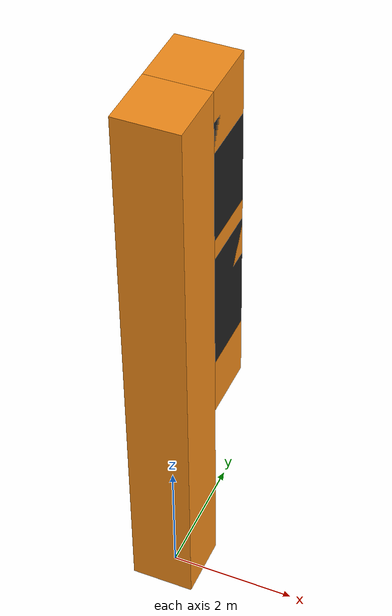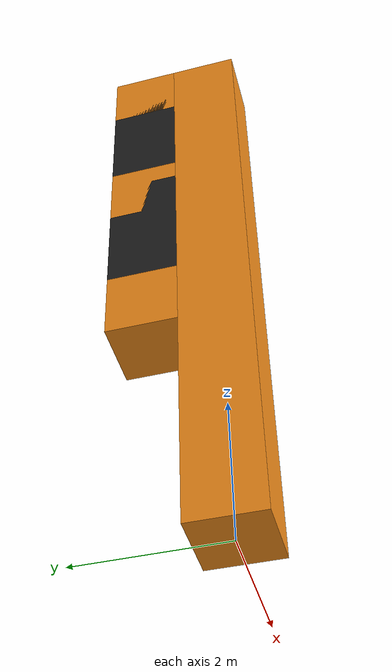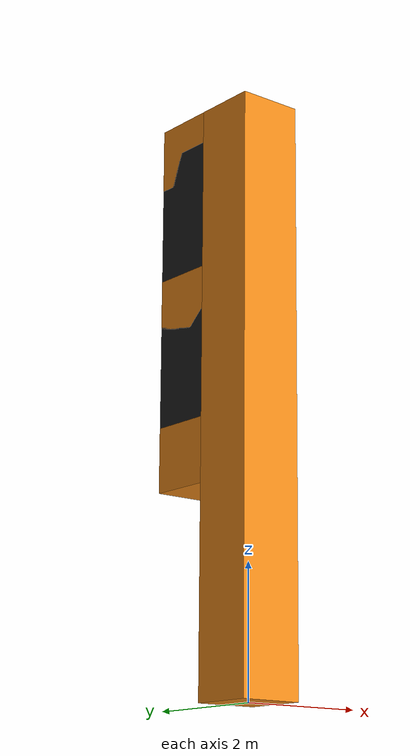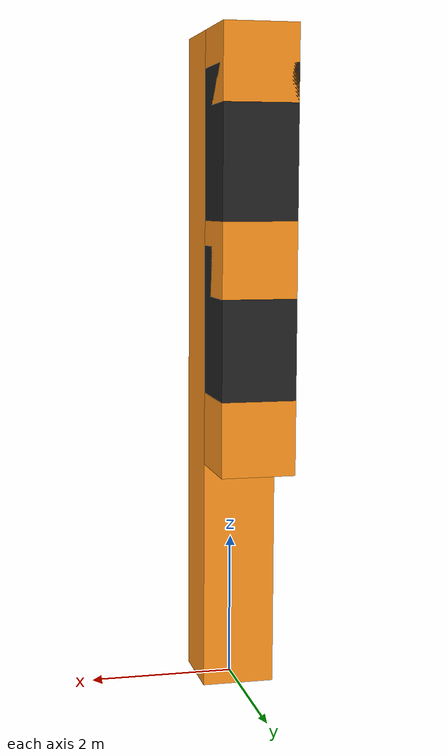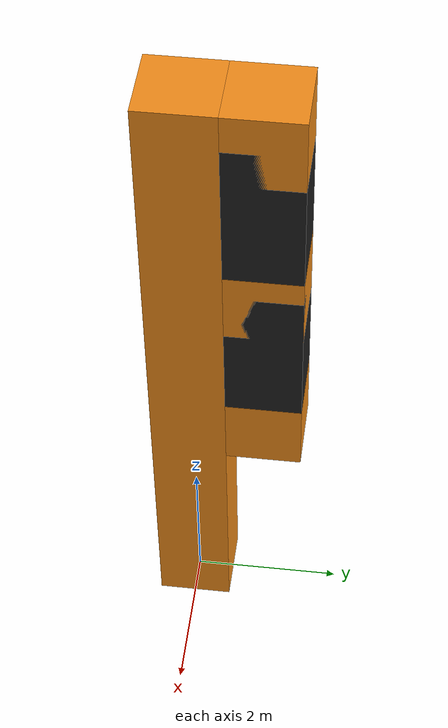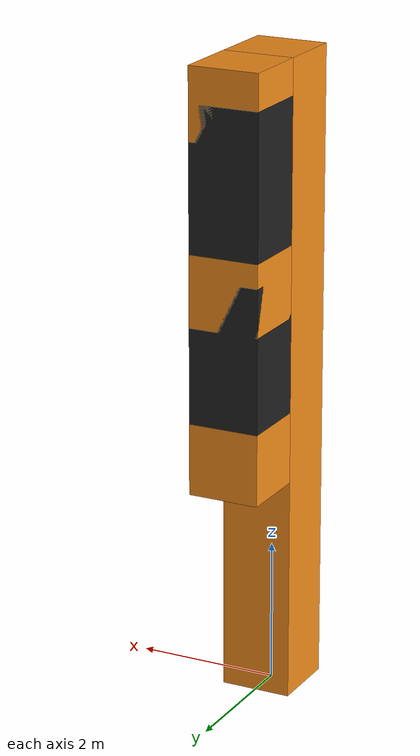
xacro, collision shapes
<?xml version="1.0"?>
<!-- Revolute-Revolute Manipulator -->
<robot name="arm" xmlns:xacro="http://www.ros.org/wiki/xacro">

  <!-- Constants for robot dimensions -->
  <xacro:property name="PI" value="3.1415926535897931"/>
  <xacro:property name="width" value="1.0" /> <!-- Square dimensions (widthxwidth) of beams -->
  <xacro:property name="height1" value="9" /> <!-- Link 1 -->
  <xacro:property name="height2" value="2" /> <!-- Link 2 -->
  <xacro:property name="height3" value="2" /> <!-- Link 3 -->
  <xacro:property name="elbow_width" value="1.0" /> <!-- The length of elbow -->
  <xacro:property name="axel_offset" value="0.05" /> <!-- Space btw top of beam and the each joint -->
  <xacro:property name="limit_lower" value="-1.57" /> <!-- Space btw top of beam and the each joint -->
  <xacro:property name="limit_upper" value="1.57" /> <!-- Space btw top of beam and the each joint -->
  <xacro:property name="limit_effort" value="30" /> <!-- Space btw top of beam and the each joint -->
  <xacro:property name="limit_velocity" value="30" /> <!-- Space btw top of beam and the each joint -->
  <!-- Import all Gazebo-customization elements, including Gazebo colors -->
  <xacro:include filename="$(find arm_description)/urdf/arm.gazebo" />
  <!-- Import Rviz colors -->
  <xacro:include filename="$(find arm_description)/urdf/materials.xacro" />

  <!-- Used for fixing robot to Gazebo 'base_link' -->
  <link name="world"/>

  <joint name="fixed" type="fixed">
    <parent link="world"/>
    <child link="link1"/>
  </joint>

  <!-- Base Link -->
  <link name="link1">
    <collision>
      <origin xyz="0 0 ${height1/2}" rpy="0 0 0"/>
      <geometry>
	<box size="${width} ${width} ${height1}"/>
      </geometry>
    </collision>

    <visual>
      <origin xyz="${width*2} 0.5 0" rpy="1.57 0 -1.57"/>
      <geometry>
	<mesh filename="package://arm_description/meshes/square_body.STL" scale="3.55 3.55 3.55"/>
	<!--box size="${width} ${width} ${height1}"/-->
      </geometry>
      <material name="orange"/>
    </visual>

    <inertial>
      <origin xyz="0 0 ${height1/2}" rpy="0 0 0"/>
      <mass value="1000"/>
      <inertia
	  ixx="190.0" ixy="0.0" ixz="0.0"
	  iyy="190.0" iyz="0.0"
	  izz="190.0"/>
    </inertial>
  </link>

  <joint name="elbow1_1" type="continuous">
    <parent link="link1"/>
    <child link="elbow1"/>
    <origin xyz="0 ${width/2} ${height1-elbow_width/2}" rpy="0 0 0"/>
    <axis xyz="0 1 0"/>
    <dynamics damping="0.7"/>
    <limit effort="${limit_effort}" lower="${limit_lower}" upper="${limit_upper}" velocity="${limit_velocity}" />
    <safety_controller k_velocity="100" k_position="15" soft_lower_limit="-1.9" soft_upper_limit="0.5" />
  </joint>

  <!-- Elbow 1 Link -->
  <link name="elbow1">
    <collision>
      <origin xyz="0 ${elbow_width/2} 0" rpy="0 0 0"/>
      <geometry>
	<box size="${elbow_width} ${elbow_width} ${elbow_width}"/>
      </geometry>
    </collision>

    <visual>
      <origin xyz="${elbow_width/2.39} 0 ${elbow_width/2-0.13}" rpy="-1.57 1.57 0"/>
      <geometry>
	<mesh filename="package://arm_description/meshes/gearBox.STL" scale="0.2 0.2 0.25"/>
	<!--box size="${elbow_width} ${elbow_width} ${elbow_width}"/-->
      </geometry>
      <material name="orange"/>
    </visual>

    <inertial>
      <origin xyz="0 ${elbow_width/2} 0" rpy="0 0 0"/>
      <mass value="0.1"/>
      <inertia
	  ixx="0.1" ixy="0.0" ixz="0.0"
	  iyy="0.1" iyz="0.0"
	  izz="0.1"/>
    </inertial>
  </link>

  <joint name="elbow1_2" type="continuous">
    <parent link="elbow1"/>
    <child link="link2"/>
    <origin xyz="0 ${elbow_width/2} ${-elbow_width*0}" rpy="0 0 0"/>
    <axis xyz="1 0 0"/>
    <dynamics damping="0.7"/>
  </joint>

  <!-- Middle Link -->
  <link name="link2">
    <collision>
      <origin xyz="0 0 ${-height2/2}" rpy="0 0 0"/>
      <geometry>
	<box size="${width} ${width} ${height2}"/>
      </geometry>
    </collision>

    <visual>
      <origin xyz="${-width/2.3} 0.1 ${-height2/1}" rpy="1.57 0 0"/>
      <geometry>
	<mesh filename="package://arm_description/meshes/armSkeleton.STL" scale="0.2 0.26 0.2"/>
      </geometry>
      <material name="black"/>
    </visual>

    <inertial>
      <origin xyz="0 0 ${-height2/2}" rpy="0 0 0"/>
      <mass value="0.1"/>
      <inertia
	  ixx="10.1" ixy="0.0" ixz="0.0"
	  iyy="10.1" iyz="0.0"
	  izz="10.1"/>
    </inertial>
  </link>

  <joint name="elbow2_1" type="continuous">
    <parent link="link2"/>
    <child link="elbow2"/>
    <origin xyz="0 0 ${-height2}" rpy="0 0 0"/>
    <axis xyz="0 0 1"/>
    <dynamics damping="0.7"/>
    <limit effort="${limit_effort}" lower="${limit_lower}" upper="${limit_upper}" velocity="${limit_velocity}" />
    <safety_controller k_velocity="100" k_position="15" soft_lower_limit="-1.9" soft_upper_limit="0.5" />

  </joint>

  <!-- Elbow 2 Link -->
  <link name="elbow2">
    <collision>
      <origin xyz="0 0 ${-elbow_width/2}" rpy="0 0 0"/>
      <geometry>
	<box size="${elbow_width} ${elbow_width} ${elbow_width}"/>
      </geometry>
    </collision>

    <visual>
      <origin xyz="${elbow_width/2.55} ${-elbow_width/2.45} 0.06" rpy="0 3.14 0"/>
      <geometry>
	<mesh filename="package://arm_description/meshes/gearBox.STL" scale="0.2 0.2 0.2"/>
      </geometry>
      <material name="orange"/>
    </visual>

    <inertial>
      <origin xyz="0 0 ${-elbow_width/2}" rpy="0 0 0"/>
      <mass value="0.1"/>
      <inertia
	  ixx="0.1" ixy="0.0" ixz="0.0"
	  iyy="0.1" iyz="0.0"
	  izz="0.1"/>
    </inertial>
  </link>

  <joint name="elbow2_2" type="continuous">
    <parent link="elbow2"/>
    <child link="link3"/>
    <origin xyz="0 0 ${-elbow_width/3}" rpy="0 0 0"/>
    <axis xyz="0 1 0"/>
    <dynamics damping="0.7"/>
  </joint>

  <!-- Palm Link -->
  <link name="link3">
    <collision>
      <origin xyz="0 0 ${-height3/2}" rpy="0 0 0"/>
      <geometry>
	<box size="${width} ${width} ${height3}"/>
      </geometry>
    </collision>

    <visual>
      <origin xyz="${-width/8.0} -0.47 ${-height2/1}" rpy="1.57 0 1.57"/>
      <geometry>
	<mesh filename="package://arm_description/meshes/armSkeleton.STL" scale="0.2 0.26 0.2"/>
      </geometry>
      <material name="black"/>
    </visual>

    <inertial>
      <origin xyz="0 0 ${-height3/2}" rpy="0 0 0"/>
      <mass value="0.1"/>
      <inertia
	  ixx="3.1" ixy="0.0" ixz="0.0"
	  iyy="3.1" iyz="0.0"
	  izz="3.1"/>
    </inertial>
  </link>

  <joint name="elbow3_1" type="continuous">
    <parent link="link3"/>
    <child link="elbow3"/>
    <origin xyz="0 0 ${-height3}" rpy="0 0 0"/>
    <axis xyz="0 0 1"/>
    <dynamics damping="0.7"/>
  </joint>

  <!-- Elbow 3 Link -->
  <link name="elbow3">
    <collision>
      <origin xyz="0 0 ${-elbow_width/2}" rpy="0 0 0"/>
      <geometry>
	<box size="${elbow_width} ${elbow_width} ${elbow_width}"/>
      </geometry>
    </collision>

    <visual>
      <origin xyz="0.4 -0.4 0.05" rpy="0 3.14 0"/>
      <geometry>
	<mesh filename="package://arm_description/meshes/gearBox.STL" scale="0.2 0.2 0.2"/>
      </geometry>
      <material name="orange"/>
    </visual>

    <inertial>
      <origin xyz="0 0 ${-elbow_width/2}" rpy="0 0 0"/>
      <mass value="0.1"/>
      <inertia
	  ixx="0.1" ixy="0.0" ixz="0.0"
	  iyy="0.1" iyz="0.0"
	  izz="0.1"/>
    </inertial>
  </link>

  <transmission name="tran_elbow1_1">
    <type>transmission_interface/SimpleTransmission</type>
    <joint name="elbow1_1">
      <hardwareInterface>EffortJointInterface</hardwareInterface>
    </joint>
    <actuator name="motor1_1">
      <hardwareInterface>EffortJointInterface</hardwareInterface>
      <mechanicalReduction>1</mechanicalReduction>
    </actuator>
  </transmission>

  <transmission name="tran_elbow1_2">
    <type>transmission_interface/SimpleTransmission</type>
    <joint name="elbow1_2">
      <hardwareInterface>EffortJointInterface</hardwareInterface>
    </joint>
    <actuator name="motor1_2">
      <hardwareInterface>EffortJointInterface</hardwareInterface>
      <mechanicalReduction>1</mechanicalReduction>
    </actuator>
  </transmission>

  <transmission name="tran_elbow2_1">
    <type>transmission_interface/SimpleTransmission</type>
    <joint name="elbow2_1">
      <hardwareInterface>EffortJointInterface</hardwareInterface>
    </joint>
    <actuator name="motor2_1">
      <hardwareInterface>EffortJointInterface</hardwareInterface>
      <mechanicalReduction>1</mechanicalReduction>
    </actuator>
  </transmission>

  <transmission name="tran_elbow2_2">
    <type>transmission_interface/SimpleTransmission</type>
    <joint name="elbow2_2">
      <hardwareInterface>EffortJointInterface</hardwareInterface>
    </joint>
    <actuator name="motor2_2">
      <hardwareInterface>EffortJointInterface</hardwareInterface>
      <mechanicalReduction>1</mechanicalReduction>
    </actuator>
  </transmission>

  <transmission name="tran_elbow3_1">
    <type>transmission_interface/SimpleTransmission</type>
    <joint name="elbow3_1">
      <hardwareInterface>EffortJointInterface</hardwareInterface>
    </joint>
    <actuator name="motor3_1">
      <hardwareInterface>EffortJointInterface</hardwareInterface>
      <mechanicalReduction>1</mechanicalReduction>
    </actuator>
  </transmission>

</robot>
